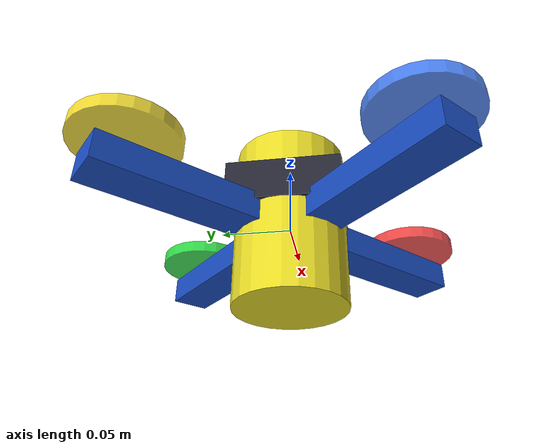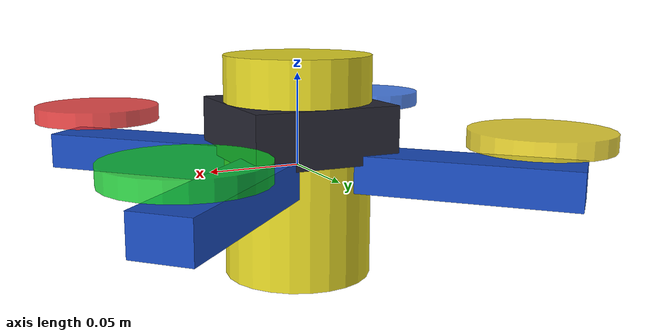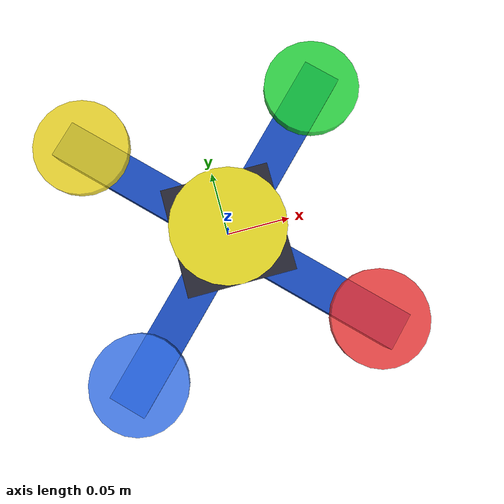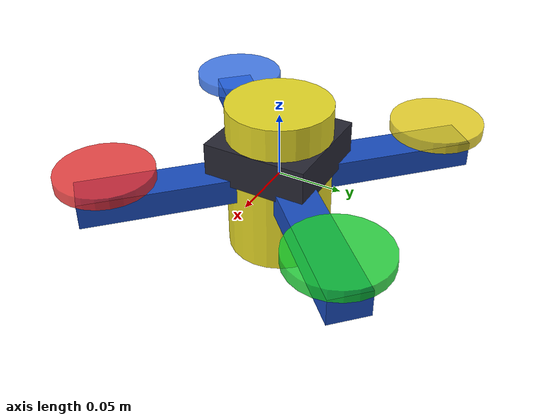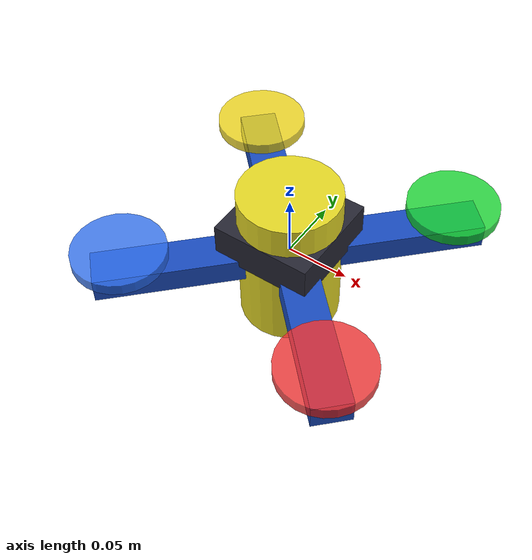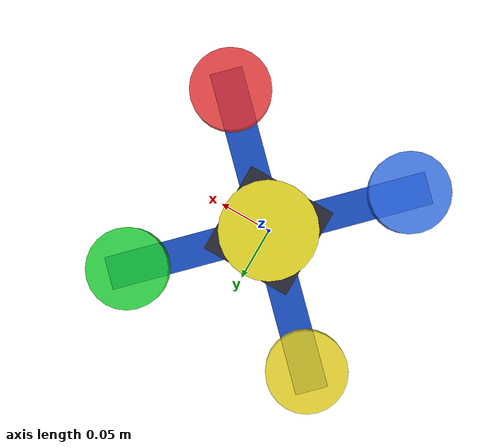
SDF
<?xml version="1.0"?>
<sdf version="1.9">
  <model name="cave_robot">
    <static>false</static>

    <!-- ─── Drone body ─── -->
    <link name="base_link">
      <gravity>false</gravity>

      <inertial>
        <mass>1.5</mass>
        <inertia>
          <ixx>0.032</ixx><iyy>0.032</iyy><izz>0.060</izz>
          <ixy>0</ixy><ixz>0</ixz><iyz>0</iyz>
        </inertia>
      </inertial>

      <!-- Scaled to 60 % of original so the drone fits comfortably through
           1 m corridors (0.28 m wide → 0.40 m diagonal when turning). -->
      <visual name="frame_diag1">
        <pose>0 0 0 0 0 0.7854</pose>
        <geometry><box><size>0.30 0.03 0.02</size></box></geometry>
        <material>
          <ambient>0.10 0.30 0.75 1</ambient>
          <diffuse>0.10 0.30 0.75 1</diffuse>
          <specular>0.20 0.20 0.20 1</specular>
        </material>
      </visual>
      <visual name="frame_diag2">
        <pose>0 0 0 0 0 -0.7854</pose>
        <geometry><box><size>0.30 0.03 0.02</size></box></geometry>
        <material>
          <ambient>0.10 0.30 0.75 1</ambient>
          <diffuse>0.10 0.30 0.75 1</diffuse>
          <specular>0.20 0.20 0.20 1</specular>
        </material>
      </visual>
      <visual name="hub">
        <pose>0 0 0.02 0 0 0</pose>
        <geometry><box><size>0.08 0.08 0.03</size></box></geometry>
        <material>
          <ambient>0.15 0.15 0.20 1</ambient>
          <diffuse>0.15 0.15 0.20 1</diffuse>
        </material>
      </visual>
      <visual name="beacon">
        <pose>0 0 -0.015 0 0 0</pose>
        <geometry><sphere><radius>0.025</radius></sphere></geometry>
        <material>
          <ambient>1.00 0.10 0.10 1</ambient>
          <diffuse>1.00 0.10 0.10 1</diffuse>
          <emissive>0.80 0.05 0.05 1</emissive>
        </material>
      </visual>

      <visual name="rotor_fl">
        <pose>0.09 0.09 0.022 0 0 0</pose>
        <geometry><cylinder><radius>0.036</radius><length>0.009</length></cylinder></geometry>
        <material>
          <ambient>0.10 0.85 0.20 0.85</ambient>
          <diffuse>0.10 0.85 0.20 0.85</diffuse>
        </material>
      </visual>
      <visual name="rotor_fr">
        <pose>0.09 -0.09 0.022 0 0 0</pose>
        <geometry><cylinder><radius>0.036</radius><length>0.009</length></cylinder></geometry>
        <material>
          <ambient>0.95 0.20 0.20 0.85</ambient>
          <diffuse>0.95 0.20 0.20 0.85</diffuse>
        </material>
      </visual>
      <visual name="rotor_bl">
        <pose>-0.09 0.09 0.022 0 0 0</pose>
        <geometry><cylinder><radius>0.036</radius><length>0.009</length></cylinder></geometry>
        <material>
          <ambient>0.95 0.85 0.10 0.85</ambient>
          <diffuse>0.95 0.85 0.10 0.85</diffuse>
        </material>
      </visual>
      <visual name="rotor_br">
        <pose>-0.09 -0.09 0.022 0 0 0</pose>
        <geometry><cylinder><radius>0.036</radius><length>0.009</length></cylinder></geometry>
        <material>
          <ambient>0.20 0.45 0.95 0.85</ambient>
          <diffuse>0.20 0.45 0.95 0.85</diffuse>
        </material>
      </visual>

      <!-- Box covers the full rotor span: tips reach 0.126 m per axis
           (rotor at ±0.09 m + 0.036 m radius), 0.28 m wide with margin. -->
      <collision name="body_col">
        <geometry><box><size>0.28 0.28 0.08</size></box></geometry>
      </collision>
    </link>

    <!-- ─── LiDAR payload link (above the drone, droppable) ─── -->
    <link name="lidar_link">
      <gravity>false</gravity>
      <inertial>
        <mass>0.15</mass>
        <inertia>
          <ixx>0.0005</ixx><iyy>0.0005</iyy><izz>0.0005</izz>
          <ixy>0</ixy><ixz>0</ixz><iyz>0</iyz>
        </inertia>
      </inertial>

      <visual name="payload_visual">
        <geometry><cylinder><radius>0.04</radius><length>0.12</length></cylinder></geometry>
        <material>
          <ambient>0.90 0.85 0.15 1</ambient>
          <diffuse>0.90 0.85 0.15 1</diffuse>
          <emissive>0.40 0.35 0.05 1</emissive>
        </material>
      </visual>
      <collision name="payload_collision">
        <geometry><cylinder><radius>0.04</radius><length>0.12</length></cylinder></geometry>
      </collision>

      <!-- 3D GPU LiDAR -->
      <sensor name="lidar_3d" type="gpu_lidar">
        <topic>/cave_robot/lidar</topic>
        <pose>0 0 0.06 0 0 0</pose>
        <update_rate>10</update_rate>
        <always_on>true</always_on>
        <lidar>
          <scan>
            <horizontal>
              <samples>180</samples>
              <resolution>1</resolution>
              <min_angle>-3.14159265</min_angle>
              <max_angle>3.14159265</max_angle>
            </horizontal>
            <vertical>
              <samples>32</samples>
              <resolution>1</resolution>
              <min_angle>-0.6981</min_angle>
              <max_angle>0.6981</max_angle>
            </vertical>
          </scan>
          <range>
            <min>0.10</min>
            <max>8.00</max>
            <resolution>0.01</resolution>
          </range>
        </lidar>
      </sensor>
    </link>

    <!-- ─── Fixed joint: mount LiDAR payload above the drone ─── -->
    <joint name="lidar_mount" type="fixed">
      <parent>base_link</parent>
      <child>lidar_link</child>
      <pose>0 0 0.15 0 0 0</pose>
    </joint>

    <plugin filename="gz-sim-sensors-system"
            name="gz::sim::systems::Sensors">
      <render_engine>ogre2</render_engine>
    </plugin>

    <plugin filename="gz-sim-velocity-control-system"
            name="gz::sim::systems::VelocityControl"/>

    <plugin filename="gz-sim-pose-publisher-system"
            name="gz::sim::systems::PosePublisher"/>
  </model>
</sdf>
